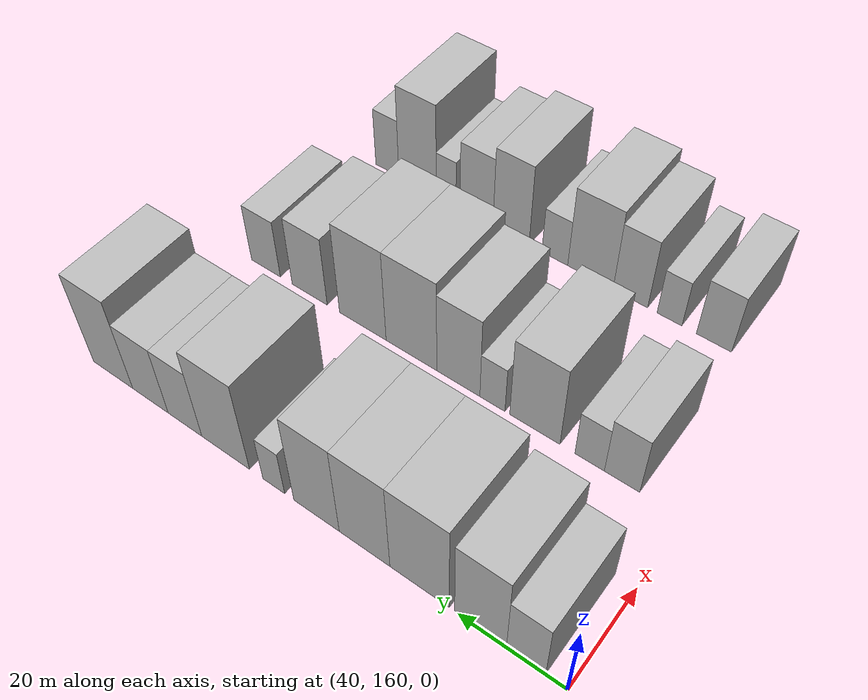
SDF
<sdf version="1.6">
 <world name="default">
  <model name="building_58">
   <static>1</static>
   <pose>50.0000 167.4684 0 0.000000 0.000000 0.000000</pose>
   <link name="link">
    <pose>0 0 7.50 0 0 0</pose>
    <collision name="collision"><geometry><box><size>20.0000 7.0686 15.0000</size></box></geometry></collision>
    <visual name="visual">
     <cast_shadows>0</cast_shadows>
     <geometry><box><size>20.0000 7.0686 15.0000</size></box></geometry>
     <material>
      <script>
       <uri>model://HANNAS_wall/materials/scripts</uri>
       <uri>model://HANNAS_wall/materials/textures</uri>
       <name>vrc/HANNAS_wall</name>
      </script>
     </material>
    </visual>
   </link>
  </model>
  <model name="building_59">
   <static>1</static>
   <pose>50.0000 175.8399 0 0.000000 0.000000 0.000000</pose>
   <link name="link">
    <pose>0 0 10.50 0 0 0</pose>
    <collision name="collision"><geometry><box><size>20.0000 9.6744 21.0000</size></box></geometry></collision>
    <visual name="visual">
     <cast_shadows>0</cast_shadows>
     <geometry><box><size>20.0000 9.6744 21.0000</size></box></geometry>
     <material>
      <script>
       <uri>model://HANNAS_wall/materials/scripts</uri>
       <uri>model://HANNAS_wall/materials/textures</uri>
       <name>vrc/HANNAS_wall</name>
      </script>
     </material>
    </visual>
   </link>
  </model>
  <model name="building_60">
   <static>1</static>
   <pose>50.0000 187.4955 0 0.000000 0.000000 0.000000</pose>
   <link name="link">
    <pose>0 0 12.00 0 0 0</pose>
    <collision name="collision"><geometry><box><size>20.0000 11.6368 24.0000</size></box></geometry></collision>
    <visual name="visual">
     <cast_shadows>0</cast_shadows>
     <geometry><box><size>20.0000 11.6368 24.0000</size></box></geometry>
     <material>
      <script>
       <uri>model://HANNAS_wall/materials/scripts</uri>
       <uri>model://HANNAS_wall/materials/textures</uri>
       <name>vrc/HANNAS_wall</name>
      </script>
     </material>
    </visual>
   </link>
  </model>
  <model name="building_61">
   <static>1</static>
   <pose>50.0000 198.5127 0 0.000000 0.000000 0.000000</pose>
   <link name="link">
    <pose>0 0 12.00 0 0 0</pose>
    <collision name="collision"><geometry><box><size>20.0000 10.3974 24.0000</size></box></geometry></collision>
    <visual name="visual">
     <cast_shadows>0</cast_shadows>
     <geometry><box><size>20.0000 10.3974 24.0000</size></box></geometry>
     <material>
      <script>
       <uri>model://HANNAS_wall/materials/scripts</uri>
       <uri>model://HANNAS_wall/materials/textures</uri>
       <name>vrc/HANNAS_wall</name>
      </script>
     </material>
    </visual>
   </link>
  </model>
  <model name="building_62">
   <static>1</static>
   <pose>50.0000 208.5601 0 0.000000 0.000000 0.000000</pose>
   <link name="link">
    <pose>0 0 12.00 0 0 0</pose>
    <collision name="collision"><geometry><box><size>20.0000 9.6974 24.0000</size></box></geometry></collision>
    <visual name="visual">
     <cast_shadows>0</cast_shadows>
     <geometry><box><size>20.0000 9.6974 24.0000</size></box></geometry>
     <material>
      <script>
       <uri>model://HANNAS_wall/materials/scripts</uri>
       <uri>model://HANNAS_wall/materials/textures</uri>
       <name>vrc/HANNAS_wall</name>
      </script>
     </material>
    </visual>
   </link>
  </model>
  <model name="building_63">
   <static>1</static>
   <pose>50.0000 217.8265 0 0.000000 0.000000 0.000000</pose>
   <link name="link">
    <pose>0 0 6.00 0 0 0</pose>
    <collision name="collision"><geometry><box><size>20.0000 4.8355 12.0000</size></box></geometry></collision>
    <visual name="visual">
     <cast_shadows>0</cast_shadows>
     <geometry><box><size>20.0000 4.8355 12.0000</size></box></geometry>
     <material>
      <script>
       <uri>model://HANNAS_wall/materials/scripts</uri>
       <uri>model://HANNAS_wall/materials/textures</uri>
       <name>vrc/HANNAS_wall</name>
      </script>
     </material>
    </visual>
   </link>
  </model>
  <model name="building_64">
   <static>1</static>
   <pose>50.0000 228.7543 0 0.000000 0.000000 0.000000</pose>
   <link name="link">
    <pose>0 0 12.00 0 0 0</pose>
    <collision name="collision"><geometry><box><size>20.0000 11.0201 24.0000</size></box></geometry></collision>
    <visual name="visual">
     <cast_shadows>0</cast_shadows>
     <geometry><box><size>20.0000 11.0201 24.0000</size></box></geometry>
     <material>
      <script>
       <uri>model://HANNAS_wall/materials/scripts</uri>
       <uri>model://HANNAS_wall/materials/textures</uri>
       <name>vrc/HANNAS_wall</name>
      </script>
     </material>
    </visual>
   </link>
  </model>
  <model name="building_65">
   <static>1</static>
   <pose>50.0000 238.3032 0 0.000000 0.000000 0.000000</pose>
   <link name="link">
    <pose>0 0 9.00 0 0 0</pose>
    <collision name="collision"><geometry><box><size>20.0000 8.0778 18.0000</size></box></geometry></collision>
    <visual name="visual">
     <cast_shadows>0</cast_shadows>
     <geometry><box><size>20.0000 8.0778 18.0000</size></box></geometry>
     <material>
      <script>
       <uri>model://HANNAS_wall/materials/scripts</uri>
       <uri>model://HANNAS_wall/materials/textures</uri>
       <name>vrc/HANNAS_wall</name>
      </script>
     </material>
    </visual>
   </link>
  </model>
  <model name="building_66">
   <static>1</static>
   <pose>50.0000 246.7256 0 0.000000 0.000000 0.000000</pose>
   <link name="link">
    <pose>0 0 9.00 0 0 0</pose>
    <collision name="collision"><geometry><box><size>20.0000 8.7670 18.0000</size></box></geometry></collision>
    <visual name="visual">
     <cast_shadows>0</cast_shadows>
     <geometry><box><size>20.0000 8.7670 18.0000</size></box></geometry>
     <material>
      <script>
       <uri>model://HANNAS_wall/materials/scripts</uri>
       <uri>model://HANNAS_wall/materials/textures</uri>
       <name>vrc/HANNAS_wall</name>
      </script>
     </material>
    </visual>
   </link>
  </model>
  <model name="building_67">
   <static>1</static>
   <pose>50.0000 256.1315 0 0.000000 0.000000 0.000000</pose>
   <link name="link">
    <pose>0 0 12.00 0 0 0</pose>
    <collision name="collision"><geometry><box><size>20.0000 10.0448 24.0000</size></box></geometry></collision>
    <visual name="visual">
     <cast_shadows>0</cast_shadows>
     <geometry><box><size>20.0000 10.0448 24.0000</size></box></geometry>
     <material>
      <script>
       <uri>model://HANNAS_wall/materials/scripts</uri>
       <uri>model://HANNAS_wall/materials/textures</uri>
       <name>vrc/HANNAS_wall</name>
      </script>
     </material>
    </visual>
   </link>
  </model>
  <model name="building_138">
   <static>1</static>
   <pose>85.0000 171.6947 0 0.000000 0.000000 0.000000</pose>
   <link name="link">
    <pose>0 0 7.50 0 0 0</pose>
    <collision name="collision"><geometry><box><size>20.0000 6.8505 15.0000</size></box></geometry></collision>
    <visual name="visual">
     <cast_shadows>0</cast_shadows>
     <geometry><box><size>20.0000 6.8505 15.0000</size></box></geometry>
     <material>
      <script>
       <uri>model://HANNAS_wall/materials/scripts</uri>
       <uri>model://HANNAS_wall/materials/textures</uri>
       <name>vrc/HANNAS_wall</name>
      </script>
     </material>
    </visual>
   </link>
  </model>
  <model name="building_139">
   <static>1</static>
   <pose>85.0000 178.0321 0 0.000000 0.000000 0.000000</pose>
   <link name="link">
    <pose>0 0 6.00 0 0 0</pose>
    <collision name="collision"><geometry><box><size>20.0000 5.8242 12.0000</size></box></geometry></collision>
    <visual name="visual">
     <cast_shadows>0</cast_shadows>
     <geometry><box><size>20.0000 5.8242 12.0000</size></box></geometry>
     <material>
      <script>
       <uri>model://HANNAS_wall/materials/scripts</uri>
       <uri>model://HANNAS_wall/materials/textures</uri>
       <name>vrc/HANNAS_wall</name>
      </script>
     </material>
    </visual>
   </link>
  </model>
  <model name="building_140">
   <static>1</static>
   <pose>85.0000 189.1366 0 0.000000 0.000000 0.000000</pose>
   <link name="link">
    <pose>0 0 10.50 0 0 0</pose>
    <collision name="collision"><geometry><box><size>20.0000 10.3849 21.0000</size></box></geometry></collision>
    <visual name="visual">
     <cast_shadows>0</cast_shadows>
     <geometry><box><size>20.0000 10.3849 21.0000</size></box></geometry>
     <material>
      <script>
       <uri>model://HANNAS_wall/materials/scripts</uri>
       <uri>model://HANNAS_wall/materials/textures</uri>
       <name>vrc/HANNAS_wall</name>
      </script>
     </material>
    </visual>
   </link>
  </model>
  <model name="building_141">
   <static>1</static>
   <pose>85.0000 198.0063 0 0.000000 0.000000 0.000000</pose>
   <link name="link">
    <pose>0 0 6.00 0 0 0</pose>
    <collision name="collision"><geometry><box><size>20.0000 5.3545 12.0000</size></box></geometry></collision>
    <visual name="visual">
     <cast_shadows>0</cast_shadows>
     <geometry><box><size>20.0000 5.3545 12.0000</size></box></geometry>
     <material>
      <script>
       <uri>model://HANNAS_wall/materials/scripts</uri>
       <uri>model://HANNAS_wall/materials/textures</uri>
       <name>vrc/HANNAS_wall</name>
      </script>
     </material>
    </visual>
   </link>
  </model>
  <model name="building_142">
   <static>1</static>
   <pose>85.0000 205.3865 0 0.000000 0.000000 0.000000</pose>
   <link name="link">
    <pose>0 0 10.50 0 0 0</pose>
    <collision name="collision"><geometry><box><size>20.0000 9.4059 21.0000</size></box></geometry></collision>
    <visual name="visual">
     <cast_shadows>0</cast_shadows>
     <geometry><box><size>20.0000 9.4059 21.0000</size></box></geometry>
     <material>
      <script>
       <uri>model://HANNAS_wall/materials/scripts</uri>
       <uri>model://HANNAS_wall/materials/textures</uri>
       <name>vrc/HANNAS_wall</name>
      </script>
     </material>
    </visual>
   </link>
  </model>
  <model name="building_143">
   <static>1</static>
   <pose>85.0000 215.8796 0 0.000000 0.000000 0.000000</pose>
   <link name="link">
    <pose>0 0 12.00 0 0 0</pose>
    <collision name="collision"><geometry><box><size>20.0000 11.5802 24.0000</size></box></geometry></collision>
    <visual name="visual">
     <cast_shadows>0</cast_shadows>
     <geometry><box><size>20.0000 11.5802 24.0000</size></box></geometry>
     <material>
      <script>
       <uri>model://HANNAS_wall/materials/scripts</uri>
       <uri>model://HANNAS_wall/materials/textures</uri>
       <name>vrc/HANNAS_wall</name>
      </script>
     </material>
    </visual>
   </link>
  </model>
  <model name="building_144">
   <static>1</static>
   <pose>85.0000 227.1946 0 0.000000 0.000000 0.000000</pose>
   <link name="link">
    <pose>0 0 12.00 0 0 0</pose>
    <collision name="collision"><geometry><box><size>20.0000 11.0499 24.0000</size></box></geometry></collision>
    <visual name="visual">
     <cast_shadows>0</cast_shadows>
     <geometry><box><size>20.0000 11.0499 24.0000</size></box></geometry>
     <material>
      <script>
       <uri>model://HANNAS_wall/materials/scripts</uri>
       <uri>model://HANNAS_wall/materials/textures</uri>
       <name>vrc/HANNAS_wall</name>
      </script>
     </material>
    </visual>
   </link>
  </model>
  <model name="building_145">
   <static>1</static>
   <pose>85.0000 240.0616 0 0.000000 0.000000 0.000000</pose>
   <link name="link">
    <pose>0 0 9.00 0 0 0</pose>
    <collision name="collision"><geometry><box><size>20.0000 8.6841 18.0000</size></box></geometry></collision>
    <visual name="visual">
     <cast_shadows>0</cast_shadows>
     <geometry><box><size>20.0000 8.6841 18.0000</size></box></geometry>
     <material>
      <script>
       <uri>model://HANNAS_wall/materials/scripts</uri>
       <uri>model://HANNAS_wall/materials/textures</uri>
       <name>vrc/HANNAS_wall</name>
      </script>
     </material>
    </visual>
   </link>
  </model>
  <model name="building_146">
   <static>1</static>
   <pose>85.0000 251.1031 0 0.000000 0.000000 0.000000</pose>
   <link name="link">
    <pose>0 0 7.50 0 0 0</pose>
    <collision name="collision"><geometry><box><size>20.0000 7.3989 15.0000</size></box></geometry></collision>
    <visual name="visual">
     <cast_shadows>0</cast_shadows>
     <geometry><box><size>20.0000 7.3989 15.0000</size></box></geometry>
     <material>
      <script>
       <uri>model://HANNAS_wall/materials/scripts</uri>
       <uri>model://HANNAS_wall/materials/textures</uri>
       <name>vrc/HANNAS_wall</name>
      </script>
     </material>
    </visual>
   </link>
  </model>
  <model name="building_212">
   <static>1</static>
   <pose>120.0000 173.1378 0 0.000000 0.000000 0.000000</pose>
   <link name="link">
    <pose>0 0 7.50 0 0 0</pose>
    <collision name="collision"><geometry><box><size>20.0000 7.2031 15.0000</size></box></geometry></collision>
    <visual name="visual">
     <cast_shadows>0</cast_shadows>
     <geometry><box><size>20.0000 7.2031 15.0000</size></box></geometry>
     <material>
      <script>
       <uri>model://HANNAS_wall/materials/scripts</uri>
       <uri>model://HANNAS_wall/materials/textures</uri>
       <name>vrc/HANNAS_wall</name>
      </script>
     </material>
    </visual>
   </link>
  </model>
  <model name="building_213">
   <static>1</static>
   <pose>120.0000 182.3725 0 0.000000 0.000000 0.000000</pose>
   <link name="link">
    <pose>0 0 6.00 0 0 0</pose>
    <collision name="collision"><geometry><box><size>20.0000 5.2661 12.0000</size></box></geometry></collision>
    <visual name="visual">
     <cast_shadows>0</cast_shadows>
     <geometry><box><size>20.0000 5.2661 12.0000</size></box></geometry>
     <material>
      <script>
       <uri>model://HANNAS_wall/materials/scripts</uri>
       <uri>model://HANNAS_wall/materials/textures</uri>
       <name>vrc/HANNAS_wall</name>
      </script>
     </material>
    </visual>
   </link>
  </model>
  <model name="building_214">
   <static>1</static>
   <pose>120.0000 190.7791 0 0.000000 0.000000 0.000000</pose>
   <link name="link">
    <pose>0 0 9.00 0 0 0</pose>
    <collision name="collision"><geometry><box><size>20.0000 7.5471 18.0000</size></box></geometry></collision>
    <visual name="visual">
     <cast_shadows>0</cast_shadows>
     <geometry><box><size>20.0000 7.5471 18.0000</size></box></geometry>
     <material>
      <script>
       <uri>model://HANNAS_wall/materials/scripts</uri>
       <uri>model://HANNAS_wall/materials/textures</uri>
       <name>vrc/HANNAS_wall</name>
      </script>
     </material>
    </visual>
   </link>
  </model>
  <model name="building_215">
   <static>1</static>
   <pose>120.0000 199.6358 0 0.000000 0.000000 0.000000</pose>
   <link name="link">
    <pose>0 0 10.50 0 0 0</pose>
    <collision name="collision"><geometry><box><size>20.0000 10.1663 21.0000</size></box></geometry></collision>
    <visual name="visual">
     <cast_shadows>0</cast_shadows>
     <geometry><box><size>20.0000 10.1663 21.0000</size></box></geometry>
     <material>
      <script>
       <uri>model://HANNAS_wall/materials/scripts</uri>
       <uri>model://HANNAS_wall/materials/textures</uri>
       <name>vrc/HANNAS_wall</name>
      </script>
     </material>
    </visual>
   </link>
  </model>
  <model name="building_216">
   <static>1</static>
   <pose>120.0000 207.6960 0 0.000000 0.000000 0.000000</pose>
   <link name="link">
    <pose>0 0 6.00 0 0 0</pose>
    <collision name="collision"><geometry><box><size>20.0000 5.9541 12.0000</size></box></geometry></collision>
    <visual name="visual">
     <cast_shadows>0</cast_shadows>
     <geometry><box><size>20.0000 5.9541 12.0000</size></box></geometry>
     <material>
      <script>
       <uri>model://HANNAS_wall/materials/scripts</uri>
       <uri>model://HANNAS_wall/materials/textures</uri>
       <name>vrc/HANNAS_wall</name>
      </script>
     </material>
    </visual>
   </link>
  </model>
  <model name="building_217">
   <static>1</static>
   <pose>120.0000 217.9767 0 0.000000 0.000000 0.000000</pose>
   <link name="link">
    <pose>0 0 10.50 0 0 0</pose>
    <collision name="collision"><geometry><box><size>20.0000 8.6075 21.0000</size></box></geometry></collision>
    <visual name="visual">
     <cast_shadows>0</cast_shadows>
     <geometry><box><size>20.0000 8.6075 21.0000</size></box></geometry>
     <material>
      <script>
       <uri>model://HANNAS_wall/materials/scripts</uri>
       <uri>model://HANNAS_wall/materials/textures</uri>
       <name>vrc/HANNAS_wall</name>
      </script>
     </material>
    </visual>
   </link>
  </model>
  <model name="building_218">
   <static>1</static>
   <pose>120.0000 226.3321 0 0.000000 0.000000 0.000000</pose>
   <link name="link">
    <pose>0 0 9.00 0 0 0</pose>
    <collision name="collision"><geometry><box><size>20.0000 8.1031 18.0000</size></box></geometry></collision>
    <visual name="visual">
     <cast_shadows>0</cast_shadows>
     <geometry><box><size>20.0000 8.1031 18.0000</size></box></geometry>
     <material>
      <script>
       <uri>model://HANNAS_wall/materials/scripts</uri>
       <uri>model://HANNAS_wall/materials/textures</uri>
       <name>vrc/HANNAS_wall</name>
      </script>
     </material>
    </visual>
   </link>
  </model>
  <model name="building_219">
   <static>1</static>
   <pose>120.0000 233.8186 0 0.000000 0.000000 0.000000</pose>
   <link name="link">
    <pose>0 0 6.00 0 0 0</pose>
    <collision name="collision"><geometry><box><size>20.0000 4.8700 12.0000</size></box></geometry></collision>
    <visual name="visual">
     <cast_shadows>0</cast_shadows>
     <geometry><box><size>20.0000 4.8700 12.0000</size></box></geometry>
     <material>
      <script>
       <uri>model://HANNAS_wall/materials/scripts</uri>
       <uri>model://HANNAS_wall/materials/textures</uri>
       <name>vrc/HANNAS_wall</name>
      </script>
     </material>
    </visual>
   </link>
  </model>
  <model name="building_220">
   <static>1</static>
   <pose>120.0000 241.0760 0 0.000000 0.000000 0.000000</pose>
   <link name="link">
    <pose>0 0 12.00 0 0 0</pose>
    <collision name="collision"><geometry><box><size>20.0000 9.6448 24.0000</size></box></geometry></collision>
    <visual name="visual">
     <cast_shadows>0</cast_shadows>
     <geometry><box><size>20.0000 9.6448 24.0000</size></box></geometry>
     <material>
      <script>
       <uri>model://HANNAS_wall/materials/scripts</uri>
       <uri>model://HANNAS_wall/materials/textures</uri>
       <name>vrc/HANNAS_wall</name>
      </script>
     </material>
    </visual>
   </link>
  </model>
  <model name="building_221">
   <static>1</static>
   <pose>120.0000 248.9294 0 0.000000 0.000000 0.000000</pose>
   <link name="link">
    <pose>0 0 7.50 0 0 0</pose>
    <collision name="collision"><geometry><box><size>20.0000 6.0621 15.0000</size></box></geometry></collision>
    <visual name="visual">
     <cast_shadows>0</cast_shadows>
     <geometry><box><size>20.0000 6.0621 15.0000</size></box></geometry>
     <material>
      <script>
       <uri>model://HANNAS_wall/materials/scripts</uri>
       <uri>model://HANNAS_wall/materials/textures</uri>
       <name>vrc/HANNAS_wall</name>
      </script>
     </material>
    </visual>
   </link>
  </model>
 </world>
</sdf>
